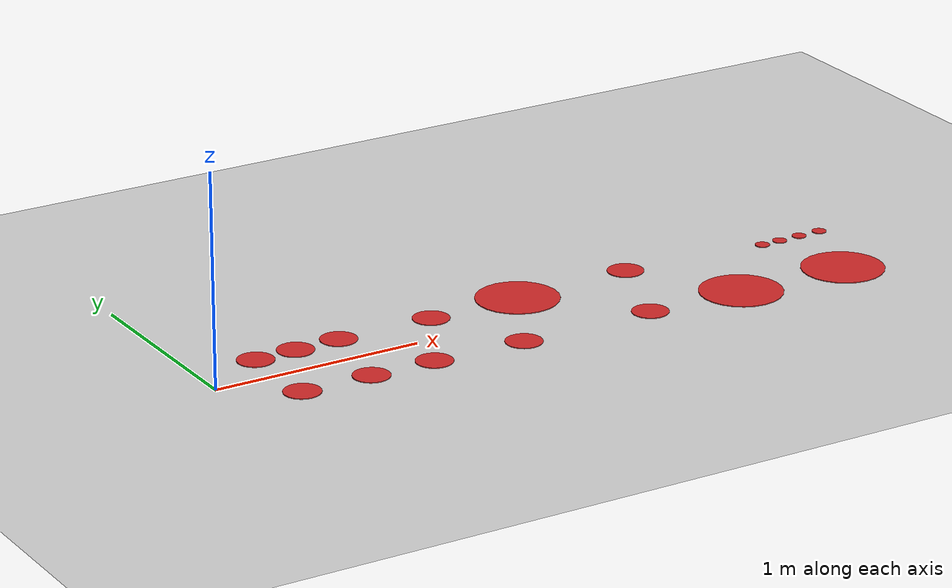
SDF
<sdf version="1.6">
 <world name="default">
  <light name="sun" type="directional">
   <pose>0 0 10 0 -0 0</pose>
   <diffuse>0.8 0.8 0.8 1</diffuse>
   <specular>0.2 0.2 0.2 1</specular>
   <attenuation>
    <range>1000</range>
    <constant>0.9</constant>
    <linear>0.01</linear>
    <quadratic>0.001</quadratic>
   </attenuation>
   <direction>-0.5 0.1 -0.9</direction>
  </light>
  <model name="ground_plane">
   <static>1</static>
   <link name="link">
    <collision name="collision">
     <geometry><plane><normal>0 0 1</normal><size>100 100</size></plane></geometry>
     <surface>
      <contact><collide_bitmask>65535</collide_bitmask></contact>
      <friction><ode><mu>100</mu><mu2>50</mu2></ode></friction>
     </surface>
    </collision>
    <visual name="visual">
     <cast_shadows>0</cast_shadows>
     <geometry><plane><normal>0 0 1</normal><size>100 100</size></plane></geometry>
     <material>
      <script><uri>file://media/materials/scripts/gazebo.material</uri><name>Gazebo/Grey</name></script>
     </material>
    </visual>
   </link>
  </model>
  <gravity>0 0 -9.8</gravity>
  <magnetic_field>6e-06 2.3e-05 -4.2e-05</magnetic_field>
  <atmosphere type="adiabatic"/>
  <physics name="default_physics" default="0" type="ode">
   <max_step_size>0.001</max_step_size>
   <real_time_factor>1</real_time_factor>
   <real_time_update_rate>1000</real_time_update_rate>
  </physics>
  <scene><ambient>0.4 0.4 0.4 1</ambient><background>0.7 0.7 0.7 1</background><shadows>1</shadows></scene>
  <spherical_coordinates>
   <surface_model>EARTH_WGS84</surface_model>
   <latitude_deg>0</latitude_deg>
   <longitude_deg>0</longitude_deg>
   <elevation>0</elevation>
   <heading_deg>0</heading_deg>
  </spherical_coordinates>
  <model name="unit_cylinder">
   <static>1</static>
   <pose>0.301881 0.202257 0.001918 0 -0 0</pose>
   <link name="link">
    <inertial>
     <mass>1</mass>
     <inertia><ixx>0.145833</ixx><ixy>0</ixy><ixz>0</ixz><iyy>0.145833</iyy><iyz>0</iyz><izz>0.125</izz></inertia>
    </inertial>
    <collision name="collision">
     <geometry><cylinder><radius>0.086188</radius><length>0.003837</length></cylinder></geometry>
    </collision>
    <visual name="visual">
     <geometry><cylinder><radius>0.086188</radius><length>0.003837</length></cylinder></geometry>
     <material>
      <script><name>Gazebo/Red</name><uri>file://media/materials/scripts/gazebo.material</uri></script>
     </material>
    </visual>
   </link>
  </model>
  <audio><device>default</device></audio>
  <model name="unit_cylinder_clone">
   <static>1</static>
   <pose>0.30804 -0.208809 0.001918 0 -0 0</pose>
   <link name="link">
    <inertial>
     <mass>1</mass>
     <inertia><ixx>0.145833</ixx><ixy>0</ixy><ixz>0</ixz><iyy>0.145833</iyy><iyz>0</iyz><izz>0.125</izz></inertia>
    </inertial>
    <collision name="collision">
     <geometry><cylinder><radius>0.086188</radius><length>0.003837</length></cylinder></geometry>
    </collision>
    <visual name="visual">
     <geometry><cylinder><radius>0.086188</radius><length>0.003837</length></cylinder></geometry>
     <material>
      <script><name>Gazebo/Red</name><uri>file://media/materials/scripts/gazebo.material</uri></script>
     </material>
    </visual>
   </link>
  </model>
  <model name="unit_cylinder_clone_clone">
   <static>1</static>
   <pose>0.505556 0.211093 0.001918 0 -0 0</pose>
   <link name="link">
    <inertial>
     <mass>1</mass>
     <inertia><ixx>0.145833</ixx><ixy>0</ixy><ixz>0</ixz><iyy>0.145833</iyy><iyz>0</iyz><izz>0.125</izz></inertia>
    </inertial>
    <collision name="collision">
     <geometry><cylinder><radius>0.086188</radius><length>0.003837</length></cylinder></geometry>
    </collision>
    <visual name="visual">
     <geometry><cylinder><radius>0.086188</radius><length>0.003837</length></cylinder></geometry>
     <material>
      <script><name>Gazebo/Red</name><uri>file://media/materials/scripts/gazebo.material</uri></script>
     </material>
    </visual>
   </link>
  </model>
  <model name="unit_cylinder_clone_clone_0">
   <static>1</static>
   <pose>0.649029 -0.209571 0.001918 0 -0 0</pose>
   <link name="link">
    <inertial>
     <mass>1</mass>
     <inertia><ixx>0.145833</ixx><ixy>0</ixy><ixz>0</ixz><iyy>0.145833</iyy><iyz>0</iyz><izz>0.125</izz></inertia>
    </inertial>
    <collision name="collision">
     <geometry><cylinder><radius>0.086188</radius><length>0.003837</length></cylinder></geometry>
    </collision>
    <visual name="visual">
     <geometry><cylinder><radius>0.086188</radius><length>0.003837</length></cylinder></geometry>
     <material>
      <script><name>Gazebo/Red</name><uri>file://media/materials/scripts/gazebo.material</uri></script>
     </material>
    </visual>
   </link>
  </model>
  <model name="unit_cylinder_clone_clone_1">
   <static>1</static>
   <pose>0.727211 0.220077 0.001918 0 -0 0</pose>
   <link name="link">
    <inertial>
     <mass>1</mass>
     <inertia><ixx>0.145833</ixx><ixy>0</ixy><ixz>0</ixz><iyy>0.145833</iyy><iyz>0</iyz><izz>0.125</izz></inertia>
    </inertial>
    <collision name="collision">
     <geometry><cylinder><radius>0.086188</radius><length>0.003837</length></cylinder></geometry>
    </collision>
    <visual name="visual">
     <geometry><cylinder><radius>0.086188</radius><length>0.003837</length></cylinder></geometry>
     <material>
      <script><name>Gazebo/Red</name><uri>file://media/materials/scripts/gazebo.material</uri></script>
     </material>
    </visual>
   </link>
  </model>
  <model name="unit_cylinder_clone_clone_2">
   <static>1</static>
   <pose>0.964502 -0.210974 0.001918 0 -0 0</pose>
   <link name="link">
    <inertial>
     <mass>1</mass>
     <inertia><ixx>0.145833</ixx><ixy>0</ixy><ixz>0</ixz><iyy>0.145833</iyy><iyz>0</iyz><izz>0.125</izz></inertia>
    </inertial>
    <collision name="collision">
     <geometry><cylinder><radius>0.086188</radius><length>0.003837</length></cylinder></geometry>
    </collision>
    <visual name="visual">
     <geometry><cylinder><radius>0.086188</radius><length>0.003837</length></cylinder></geometry>
     <material>
      <script><name>Gazebo/Red</name><uri>file://media/materials/scripts/gazebo.material</uri></script>
     </material>
    </visual>
   </link>
  </model>
  <model name="unit_cylinder_clone_clone_3">
   <static>1</static>
   <pose>1.19939 0.218227 0.001918 0 -0 0</pose>
   <link name="link">
    <inertial>
     <mass>1</mass>
     <inertia><ixx>0.145833</ixx><ixy>0</ixy><ixz>0</ixz><iyy>0.145833</iyy><iyz>0</iyz><izz>0.125</izz></inertia>
    </inertial>
    <collision name="collision">
     <geometry><cylinder><radius>0.086188</radius><length>0.003837</length></cylinder></geometry>
    </collision>
    <visual name="visual">
     <geometry><cylinder><radius>0.086188</radius><length>0.003837</length></cylinder></geometry>
     <material>
      <script><name>Gazebo/Red</name><uri>file://media/materials/scripts/gazebo.material</uri></script>
     </material>
    </visual>
   </link>
  </model>
  <model name="unit_cylinder_clone_clone_4">
   <static>1</static>
   <pose>1.41405 -0.225446 0.001918 0 -0 0</pose>
   <link name="link">
    <inertial>
     <mass>1</mass>
     <inertia><ixx>0.145833</ixx><ixy>0</ixy><ixz>0</ixz><iyy>0.145833</iyy><iyz>0</iyz><izz>0.125</izz></inertia>
    </inertial>
    <collision name="collision">
     <geometry><cylinder><radius>0.086188</radius><length>0.003837</length></cylinder></geometry>
    </collision>
    <visual name="visual">
     <geometry><cylinder><radius>0.086188</radius><length>0.003837</length></cylinder></geometry>
     <material>
      <script><name>Gazebo/Red</name><uri>file://media/materials/scripts/gazebo.material</uri></script>
     </material>
    </visual>
   </link>
  </model>
  <model name="unit_cylinder_clone_clone_5">
   <static>1</static>
   <pose>1.65567 0.224706 0.001918 0 -0 0</pose>
   <link name="link">
    <inertial>
     <mass>1</mass>
     <inertia><ixx>0.145833</ixx><ixy>0</ixy><ixz>0</ixz><iyy>0.145833</iyy><iyz>0</iyz><izz>0.125</izz></inertia>
    </inertial>
    <collision name="collision">
     <geometry><cylinder><radius>0.195647</radius><length>0.003837</length></cylinder></geometry>
    </collision>
    <visual name="visual">
     <geometry><cylinder><radius>0.195647</radius><length>0.003837</length></cylinder></geometry>
     <material>
      <script><name>Gazebo/Red</name><uri>file://media/materials/scripts/gazebo.material</uri></script>
     </material>
    </visual>
   </link>
  </model>
  <model name="unit_cylinder_clone_clone_4_clone">
   <static>1</static>
   <pose>2.08085 -0.221944 0.001918 0 -0 0</pose>
   <link name="link">
    <inertial>
     <mass>1</mass>
     <inertia><ixx>0.145833</ixx><ixy>0</ixy><ixz>0</ixz><iyy>0.145833</iyy><iyz>0</iyz><izz>0.125</izz></inertia>
    </inertial>
    <collision name="collision">
     <geometry><cylinder><radius>0.086188</radius><length>0.003837</length></cylinder></geometry>
    </collision>
    <visual name="visual">
     <geometry><cylinder><radius>0.086188</radius><length>0.003837</length></cylinder></geometry>
     <material>
      <script><name>Gazebo/Red</name><uri>file://media/materials/scripts/gazebo.material</uri></script>
     </material>
    </visual>
   </link>
  </model>
  <model name="unit_cylinder_clone_clone_4_clone_0">
   <static>1</static>
   <pose>2.25335 0.251756 0.001918 0 -0 0</pose>
   <link name="link">
    <inertial>
     <mass>1</mass>
     <inertia><ixx>0.145833</ixx><ixy>0</ixy><ixz>0</ixz><iyy>0.145833</iyy><iyz>0</iyz><izz>0.125</izz></inertia>
    </inertial>
    <collision name="collision">
     <geometry><cylinder><radius>0.086188</radius><length>0.003837</length></cylinder></geometry>
    </collision>
    <visual name="visual">
     <geometry><cylinder><radius>0.086188</radius><length>0.003837</length></cylinder></geometry>
     <material>
      <script><name>Gazebo/Red</name><uri>file://media/materials/scripts/gazebo.material</uri></script>
     </material>
    </visual>
   </link>
  </model>
  <model name="unit_cylinder_clone_clone_5_clone">
   <static>1</static>
   <pose>2.5672 -0.229035 0.001918 0 -0 0</pose>
   <link name="link">
    <inertial>
     <mass>1</mass>
     <inertia><ixx>0.145833</ixx><ixy>0</ixy><ixz>0</ixz><iyy>0.145833</iyy><iyz>0</iyz><izz>0.125</izz></inertia>
    </inertial>
    <collision name="collision">
     <geometry><cylinder><radius>0.195647</radius><length>0.003837</length></cylinder></geometry>
    </collision>
    <visual name="visual">
     <geometry><cylinder><radius>0.195647</radius><length>0.003837</length></cylinder></geometry>
     <material>
      <script><name>Gazebo/Red</name><uri>file://media/materials/scripts/gazebo.material</uri></script>
     </material>
    </visual>
   </link>
  </model>
  <model name="unit_cylinder_clone_clone_4_clone_0_clone">
   <static>1</static>
   <pose>2.97501 0.194067 0.001918 0 -0 0</pose>
   <link name="link">
    <inertial>
     <mass>1</mass>
     <inertia><ixx>0.145833</ixx><ixy>0</ixy><ixz>0</ixz><iyy>0.145833</iyy><iyz>0</iyz><izz>0.125</izz></inertia>
    </inertial>
    <collision name="collision">
     <geometry><cylinder><radius>0.0344248</radius><length>0.003837</length></cylinder></geometry>
    </collision>
    <visual name="visual">
     <geometry><cylinder><radius>0.0344248</radius><length>0.003837</length></cylinder></geometry>
     <material>
      <script><name>Gazebo/Red</name><uri>file://media/materials/scripts/gazebo.material</uri></script>
     </material>
    </visual>
   </link>
  </model>
  <model name="unit_cylinder_clone_clone_4_clone_0_clone_clone">
   <static>1</static>
   <pose>3.07388 0.196284 0.001918 0 -0 0</pose>
   <link name="link">
    <inertial>
     <mass>1</mass>
     <inertia><ixx>0.145833</ixx><ixy>0</ixy><ixz>0</ixz><iyy>0.145833</iyy><iyz>0</iyz><izz>0.125</izz></inertia>
    </inertial>
    <collision name="collision">
     <geometry><cylinder><radius>0.0344248</radius><length>0.003837</length></cylinder></geometry>
    </collision>
    <visual name="visual">
     <geometry><cylinder><radius>0.0344248</radius><length>0.003837</length></cylinder></geometry>
     <material>
      <script><name>Gazebo/Red</name><uri>file://media/materials/scripts/gazebo.material</uri></script>
     </material>
    </visual>
   </link>
  </model>
  <model name="unit_cylinder_clone_clone_4_clone_0_clone_clone_0">
   <static>1</static>
   <pose>3.18667 0.19986 0.001918 0 -0 0</pose>
   <link name="link">
    <inertial>
     <mass>1</mass>
     <inertia><ixx>0.145833</ixx><ixy>0</ixy><ixz>0</ixz><iyy>0.145833</iyy><iyz>0</iyz><izz>0.125</izz></inertia>
    </inertial>
    <collision name="collision">
     <geometry><cylinder><radius>0.0344248</radius><length>0.003837</length></cylinder></geometry>
    </collision>
    <visual name="visual">
     <geometry><cylinder><radius>0.0344248</radius><length>0.003837</length></cylinder></geometry>
     <material>
      <script><name>Gazebo/Red</name><uri>file://media/materials/scripts/gazebo.material</uri></script>
     </material>
    </visual>
   </link>
  </model>
  <model name="unit_cylinder_clone_clone_4_clone_0_clone_clone_1">
   <static>1</static>
   <pose>3.30224 0.201833 0.001918 0 -0 0</pose>
   <link name="link">
    <inertial>
     <mass>1</mass>
     <inertia><ixx>0.145833</ixx><ixy>0</ixy><ixz>0</ixz><iyy>0.145833</iyy><iyz>0</iyz><izz>0.125</izz></inertia>
    </inertial>
    <collision name="collision">
     <geometry><cylinder><radius>0.0344248</radius><length>0.003837</length></cylinder></geometry>
    </collision>
    <visual name="visual">
     <geometry><cylinder><radius>0.0344248</radius><length>0.003837</length></cylinder></geometry>
     <material>
      <script><name>Gazebo/Red</name><uri>file://media/materials/scripts/gazebo.material</uri></script>
     </material>
    </visual>
   </link>
  </model>
  <model name="unit_cylinder_clone_clone_5_clone_clone">
   <static>1</static>
   <pose>3.12874 -0.233282 0.001918 0 -0 0</pose>
   <link name="link">
    <inertial>
     <mass>1</mass>
     <inertia><ixx>0.145833</ixx><ixy>0</ixy><ixz>0</ixz><iyy>0.145833</iyy><iyz>0</iyz><izz>0.125</izz></inertia>
    </inertial>
    <collision name="collision">
     <geometry><cylinder><radius>0.195647</radius><length>0.003837</length></cylinder></geometry>
    </collision>
    <visual name="visual">
     <geometry><cylinder><radius>0.195647</radius><length>0.003837</length></cylinder></geometry>
     <material>
      <script><name>Gazebo/Red</name><uri>file://media/materials/scripts/gazebo.material</uri></script>
     </material>
    </visual>
   </link>
  </model>
 </world>
</sdf>
